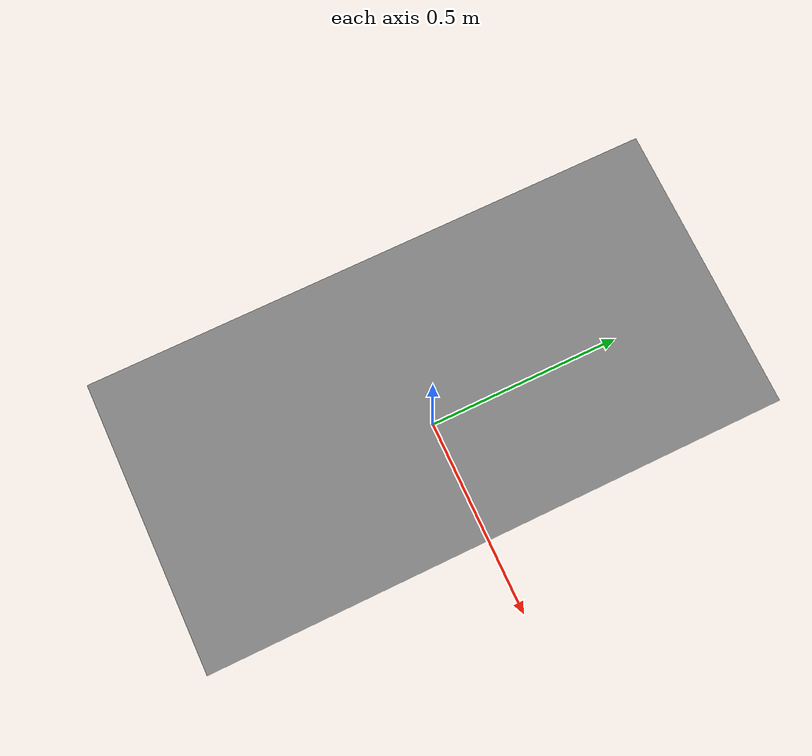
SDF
<?xml version="1.0"?>
<sdf version="1.6">
  <model name="rwc2015/couch_table">
    <link name="1_link">
      <collision name="1_col">
        <geometry>
          <box>
            <size>0.6 1.2 0.42</size>
          </box>
        </geometry>
      </collision>
      <visual name="1_vis">
        <geometry>
          <box>
            <size>0.6 1.2 0.42</size>
          </box>
        </geometry>
        <material>
          <ambient>0.5 0.5 0.5 1</ambient>
        </material>
      </visual>
      <pose>0.0 0.0 0.21 0 0 0</pose>
    </link>
    <link name="in_front_of">
      <virtual_volume name="in_front_of_vv">
        <geometry>
          <box>
            <size>0.3 1.3 1</size>
          </box>
        </geometry>
        <pose>0.0 -0.65 0.5 0 0 0</pose>
      </virtual_volume>
    </link>
    <static>true</static>
  </model>
</sdf>
